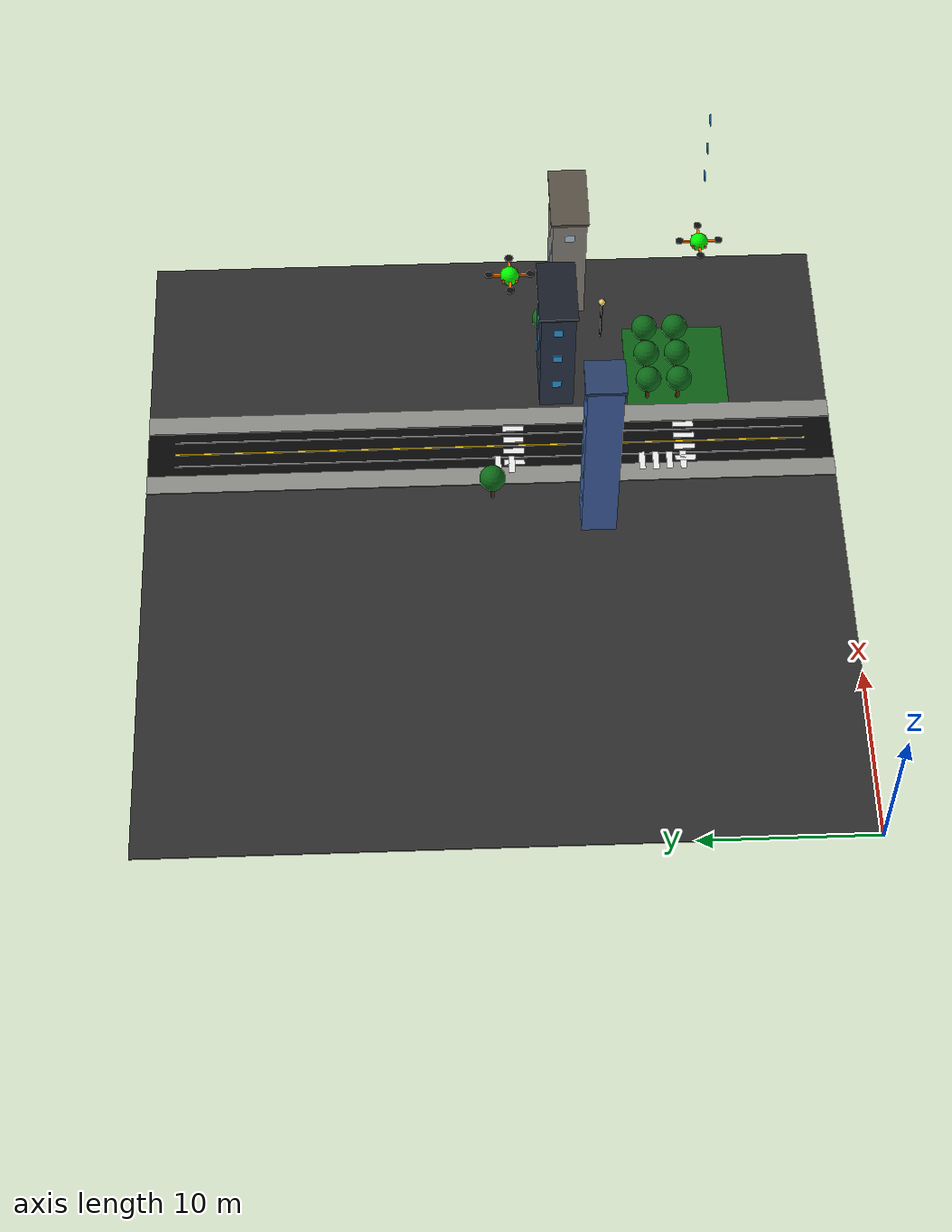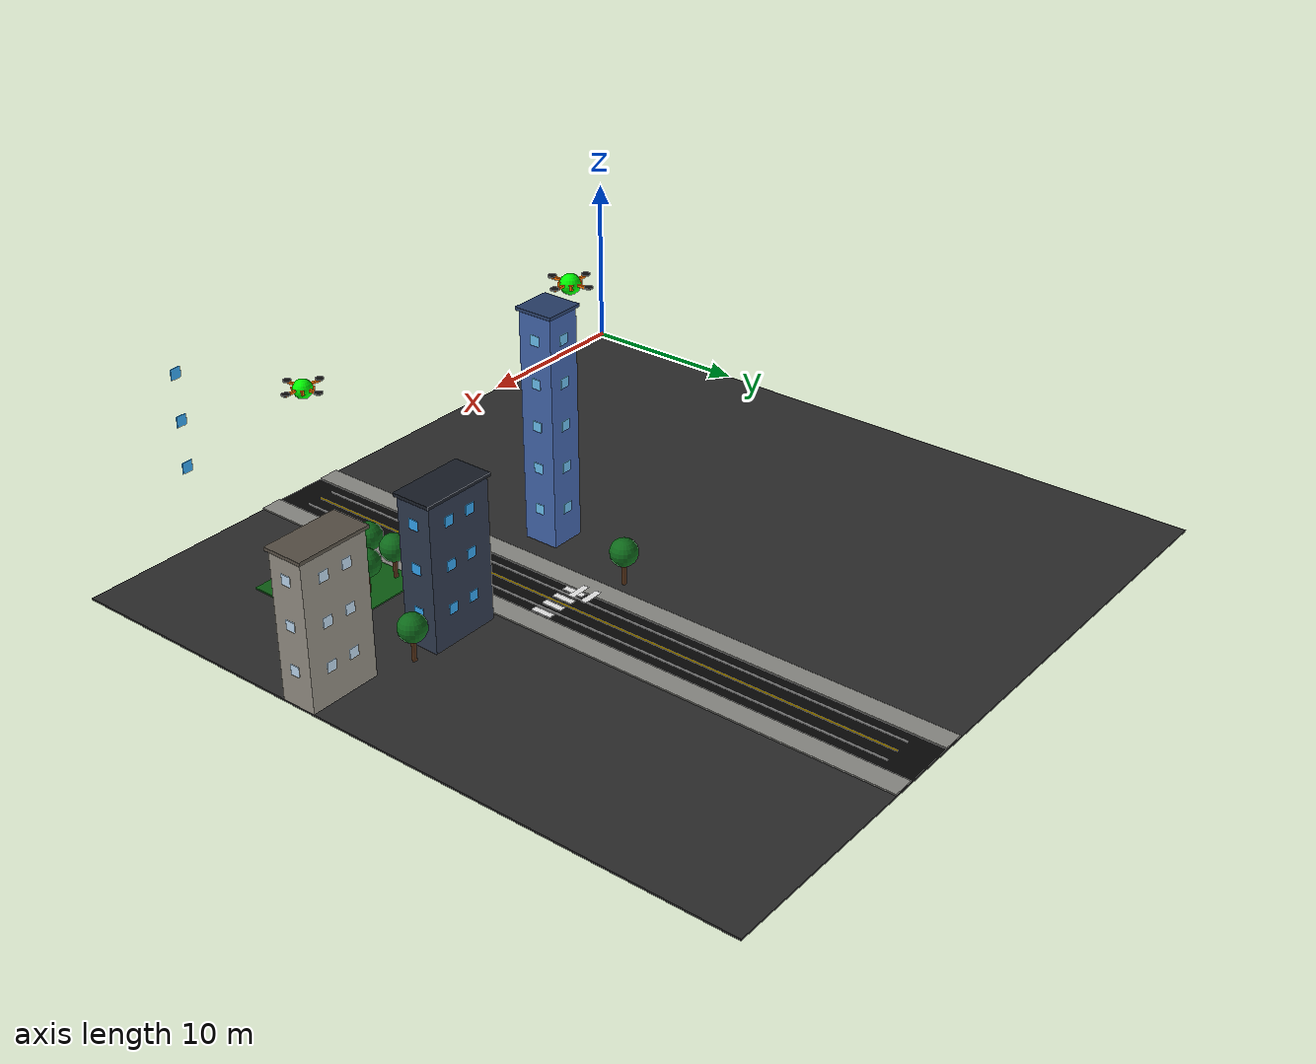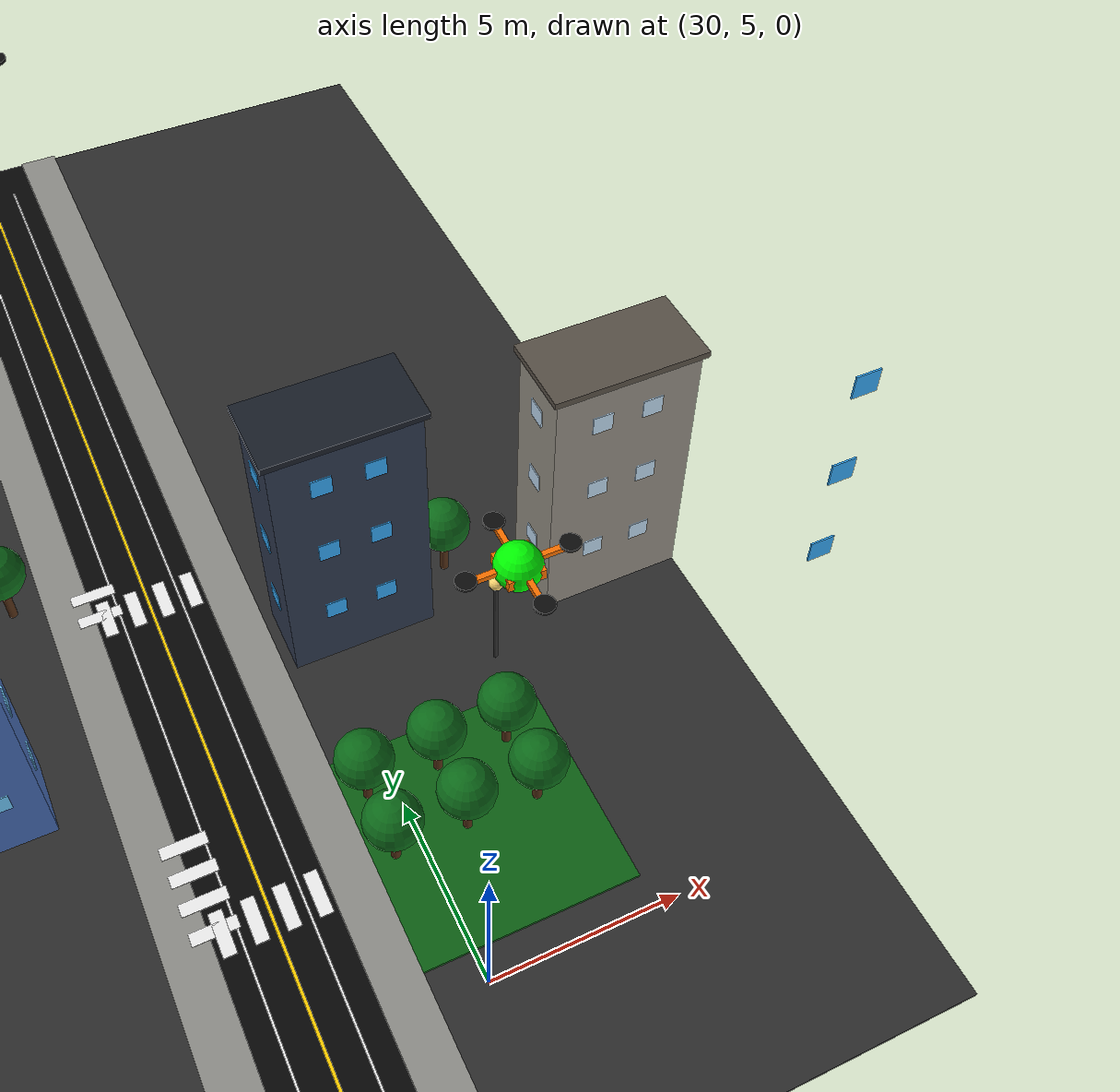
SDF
<sdf version="1.10">
 <world name="city_uav_demo">
  <model name="ground_plane">
   <static>true</static>
   <pose>20.0000 20.0000 -0.0500 0 0 0.0000</pose>
   <link name="link">
    <collision name="collision"><geometry><box><size>40.0000 40.0000 0.1000</size></box></geometry></collision>
    <visual name="visual">
     <geometry><box><size>40.0000 40.0000 0.1000</size></box></geometry>
     <material><ambient>0.18 0.18 0.18 1.0</ambient><diffuse>0.18 0.18 0.18 1.0</diffuse></material>
    </visual>
   </link>
  </model>
  <model name="road_4_surface">
   <static>true</static>
   <pose>26.0000 20.0000 0.0400 0 0 0.0000</pose>
   <link name="link">
    <collision name="collision"><geometry><box><size>3.0000 40.0000 0.0400</size></box></geometry></collision>
    <visual name="visual">
     <geometry><box><size>3.0000 40.0000 0.0400</size></box></geometry>
     <material><ambient>0.025 0.025 0.025 1.0</ambient><diffuse>0.025 0.025 0.025 1.0</diffuse></material>
    </visual>
   </link>
  </model>
  <model name="road_4_sidewalk_left">
   <static>true</static>
   <pose>23.9000 20.0000 0.0800 0 0 0.0000</pose>
   <link name="link">
    <visual name="visual">
     <geometry><box><size>1.2000 40.0000 0.0800</size></box></geometry>
     <material><ambient>0.56 0.56 0.54 1.0</ambient><diffuse>0.56 0.56 0.54 1.0</diffuse></material>
    </visual>
   </link>
  </model>
  <model name="road_4_sidewalk_right">
   <static>true</static>
   <pose>28.1000 20.0000 0.0800 0 0 0.0000</pose>
   <link name="link">
    <visual name="visual">
     <geometry><box><size>1.2000 40.0000 0.0800</size></box></geometry>
     <material><ambient>0.56 0.56 0.54 1.0</ambient><diffuse>0.56 0.56 0.54 1.0</diffuse></material>
    </visual>
   </link>
  </model>
  <model name="road_4_center_line">
   <static>true</static>
   <pose>26.0000 20.0000 0.0950 0 0 0.0000</pose>
   <link name="link">
    <visual name="visual">
     <geometry><box><size>0.0800 36.8000 0.0250</size></box></geometry>
     <material><ambient>1.0 0.82 0.0 1.0</ambient><diffuse>1.0 0.82 0.0 1.0</diffuse></material>
    </visual>
   </link>
  </model>
  <model name="road_4_white_line_1">
   <static>true</static>
   <pose>25.1600 20.0000 0.0950 0 0 0.0000</pose>
   <link name="link">
    <visual name="visual">
     <geometry><box><size>0.0550 36.8000 0.0250</size></box></geometry>
     <material><ambient>0.95 0.95 0.95 1.0</ambient><diffuse>0.95 0.95 0.95 1.0</diffuse></material>
    </visual>
   </link>
  </model>
  <model name="road_4_white_line_2">
   <static>true</static>
   <pose>26.8400 20.0000 0.0950 0 0 0.0000</pose>
   <link name="link">
    <visual name="visual">
     <geometry><box><size>0.0550 36.8000 0.0250</size></box></geometry>
     <material><ambient>0.95 0.95 0.95 1.0</ambient><diffuse>0.95 0.95 0.95 1.0</diffuse></material>
    </visual>
   </link>
  </model>
  <model name="crosswalk_1_h_0">
   <static>true</static>
   <pose>24.8000 8.6500 0.1200 0 0 0.0000</pose>
   <link name="link">
    <visual name="visual">
     <geometry><box><size>0.3500 1.2000 0.0250</size></box></geometry>
     <material><ambient>0.95 0.95 0.95 1.0</ambient><diffuse>0.95 0.95 0.95 1.0</diffuse></material>
    </visual>
   </link>
  </model>
  <model name="crosswalk_1_v_0">
   <static>true</static>
   <pose>24.6500 8.8000 0.1200 0 0 0.0000</pose>
   <link name="link">
    <visual name="visual">
     <geometry><box><size>1.2000 0.3500 0.0250</size></box></geometry>
     <material><ambient>0.95 0.95 0.95 1.0</ambient><diffuse>0.95 0.95 0.95 1.0</diffuse></material>
    </visual>
   </link>
  </model>
  <model name="crosswalk_1_h_1">
   <static>true</static>
   <pose>25.6000 8.6500 0.1200 0 0 0.0000</pose>
   <link name="link">
    <visual name="visual">
     <geometry><box><size>0.3500 1.2000 0.0250</size></box></geometry>
     <material><ambient>0.95 0.95 0.95 1.0</ambient><diffuse>0.95 0.95 0.95 1.0</diffuse></material>
    </visual>
   </link>
  </model>
  <model name="crosswalk_1_v_1">
   <static>true</static>
   <pose>24.6500 9.6000 0.1200 0 0 0.0000</pose>
   <link name="link">
    <visual name="visual">
     <geometry><box><size>1.2000 0.3500 0.0250</size></box></geometry>
     <material><ambient>0.95 0.95 0.95 1.0</ambient><diffuse>0.95 0.95 0.95 1.0</diffuse></material>
    </visual>
   </link>
  </model>
  <model name="crosswalk_1_h_2">
   <static>true</static>
   <pose>26.4000 8.6500 0.1200 0 0 0.0000</pose>
   <link name="link">
    <visual name="visual">
     <geometry><box><size>0.3500 1.2000 0.0250</size></box></geometry>
     <material><ambient>0.95 0.95 0.95 1.0</ambient><diffuse>0.95 0.95 0.95 1.0</diffuse></material>
    </visual>
   </link>
  </model>
  <model name="crosswalk_1_v_2">
   <static>true</static>
   <pose>24.6500 10.4000 0.1200 0 0 0.0000</pose>
   <link name="link">
    <visual name="visual">
     <geometry><box><size>1.2000 0.3500 0.0250</size></box></geometry>
     <material><ambient>0.95 0.95 0.95 1.0</ambient><diffuse>0.95 0.95 0.95 1.0</diffuse></material>
    </visual>
   </link>
  </model>
  <model name="crosswalk_1_h_3">
   <static>true</static>
   <pose>27.2000 8.6500 0.1200 0 0 0.0000</pose>
   <link name="link">
    <visual name="visual">
     <geometry><box><size>0.3500 1.2000 0.0250</size></box></geometry>
     <material><ambient>0.95 0.95 0.95 1.0</ambient><diffuse>0.95 0.95 0.95 1.0</diffuse></material>
    </visual>
   </link>
  </model>
  <model name="crosswalk_1_v_3">
   <static>true</static>
   <pose>24.6500 11.2000 0.1200 0 0 0.0000</pose>
   <link name="link">
    <visual name="visual">
     <geometry><box><size>1.2000 0.3500 0.0250</size></box></geometry>
     <material><ambient>0.95 0.95 0.95 1.0</ambient><diffuse>0.95 0.95 0.95 1.0</diffuse></material>
    </visual>
   </link>
  </model>
  <model name="crosswalk_3_h_0">
   <static>true</static>
   <pose>24.8000 18.6500 0.1200 0 0 0.0000</pose>
   <link name="link">
    <visual name="visual">
     <geometry><box><size>0.3500 1.2000 0.0250</size></box></geometry>
     <material><ambient>0.95 0.95 0.95 1.0</ambient><diffuse>0.95 0.95 0.95 1.0</diffuse></material>
    </visual>
   </link>
  </model>
  <model name="crosswalk_3_v_0">
   <static>true</static>
   <pose>24.6500 18.8000 0.1200 0 0 0.0000</pose>
   <link name="link">
    <visual name="visual">
     <geometry><box><size>1.2000 0.3500 0.0250</size></box></geometry>
     <material><ambient>0.95 0.95 0.95 1.0</ambient><diffuse>0.95 0.95 0.95 1.0</diffuse></material>
    </visual>
   </link>
  </model>
  <model name="crosswalk_3_h_1">
   <static>true</static>
   <pose>25.6000 18.6500 0.1200 0 0 0.0000</pose>
   <link name="link">
    <visual name="visual">
     <geometry><box><size>0.3500 1.2000 0.0250</size></box></geometry>
     <material><ambient>0.95 0.95 0.95 1.0</ambient><diffuse>0.95 0.95 0.95 1.0</diffuse></material>
    </visual>
   </link>
  </model>
  <model name="crosswalk_3_v_1">
   <static>true</static>
   <pose>24.6500 19.6000 0.1200 0 0 0.0000</pose>
   <link name="link">
    <visual name="visual">
     <geometry><box><size>1.2000 0.3500 0.0250</size></box></geometry>
     <material><ambient>0.95 0.95 0.95 1.0</ambient><diffuse>0.95 0.95 0.95 1.0</diffuse></material>
    </visual>
   </link>
  </model>
  <model name="crosswalk_3_h_2">
   <static>true</static>
   <pose>26.4000 18.6500 0.1200 0 0 0.0000</pose>
   <link name="link">
    <visual name="visual">
     <geometry><box><size>0.3500 1.2000 0.0250</size></box></geometry>
     <material><ambient>0.95 0.95 0.95 1.0</ambient><diffuse>0.95 0.95 0.95 1.0</diffuse></material>
    </visual>
   </link>
  </model>
  <model name="crosswalk_3_h_3">
   <static>true</static>
   <pose>27.2000 18.6500 0.1200 0 0 0.0000</pose>
   <link name="link">
    <visual name="visual">
     <geometry><box><size>0.3500 1.2000 0.0250</size></box></geometry>
     <material><ambient>0.95 0.95 0.95 1.0</ambient><diffuse>0.95 0.95 0.95 1.0</diffuse></material>
    </visual>
   </link>
  </model>
  <model name="building_0_body">
   <static>true</static>
   <pose>38.0000 15.0000 4.0000 0 0 0.0000</pose>
   <link name="link">
    <collision name="collision"><geometry><box><size>4.0000 2.0000 8.0000</size></box></geometry></collision>
    <visual name="visual">
     <geometry><box><size>4.0000 2.0000 8.0000</size></box></geometry>
     <material><ambient>0.58 0.56 0.52 1.0</ambient><diffuse>0.58 0.56 0.52 1.0</diffuse></material>
    </visual>
   </link>
  </model>
  <model name="building_0_roof">
   <static>true</static>
   <pose>38.0000 15.0000 8.0900 0 0 0.0000</pose>
   <link name="link">
    <collision name="collision"><geometry><box><size>4.2500 2.2500 0.1800</size></box></geometry></collision>
    <visual name="visual">
     <geometry><box><size>4.2500 2.2500 0.1800</size></box></geometry>
     <material><ambient>0.35 0.32 0.28 1.0</ambient><diffuse>0.35 0.32 0.28 1.0</diffuse></material>
    </visual>
   </link>
  </model>
  <model name="building_0_window_front_0">
   <static>true</static>
   <pose>37.3000 13.9880 2.0000 0 0 0.0000</pose>
   <link name="link">
    <visual name="visual">
     <geometry><box><size>0.5500 0.0350 0.5500</size></box></geometry>
     <material><ambient>0.75 0.86 0.95 1.0</ambient><diffuse>0.75 0.86 0.95 1.0</diffuse></material>
    </visual>
   </link>
  </model>
  <model name="building_0_window_front_1">
   <static>true</static>
   <pose>38.7000 13.9880 2.0000 0 0 0.0000</pose>
   <link name="link">
    <visual name="visual">
     <geometry><box><size>0.5500 0.0350 0.5500</size></box></geometry>
     <material><ambient>0.75 0.86 0.95 1.0</ambient><diffuse>0.75 0.86 0.95 1.0</diffuse></material>
    </visual>
   </link>
  </model>
  <model name="building_0_window_front_2">
   <static>true</static>
   <pose>37.3000 13.9880 4.4000 0 0 0.0000</pose>
   <link name="link">
    <visual name="visual">
     <geometry><box><size>0.5500 0.0350 0.5500</size></box></geometry>
     <material><ambient>0.75 0.86 0.95 1.0</ambient><diffuse>0.75 0.86 0.95 1.0</diffuse></material>
    </visual>
   </link>
  </model>
  <model name="building_0_window_front_3">
   <static>true</static>
   <pose>38.7000 13.9880 4.4000 0 0 0.0000</pose>
   <link name="link">
    <visual name="visual">
     <geometry><box><size>0.5500 0.0350 0.5500</size></box></geometry>
     <material><ambient>0.75 0.86 0.95 1.0</ambient><diffuse>0.75 0.86 0.95 1.0</diffuse></material>
    </visual>
   </link>
  </model>
  <model name="building_0_window_front_4">
   <static>true</static>
   <pose>37.3000 13.9880 6.8000 0 0 0.0000</pose>
   <link name="link">
    <visual name="visual">
     <geometry><box><size>0.5500 0.0350 0.5500</size></box></geometry>
     <material><ambient>0.75 0.86 0.95 1.0</ambient><diffuse>0.75 0.86 0.95 1.0</diffuse></material>
    </visual>
   </link>
  </model>
  <model name="building_0_window_front_5">
   <static>true</static>
   <pose>38.7000 13.9880 6.8000 0 0 0.0000</pose>
   <link name="link">
    <visual name="visual">
     <geometry><box><size>0.5500 0.0350 0.5500</size></box></geometry>
     <material><ambient>0.75 0.86 0.95 1.0</ambient><diffuse>0.75 0.86 0.95 1.0</diffuse></material>
    </visual>
   </link>
  </model>
  <model name="building_0_window_back_0">
   <static>true</static>
   <pose>37.3000 16.0120 2.0000 0 0 0.0000</pose>
   <link name="link">
    <visual name="visual">
     <geometry><box><size>0.5500 0.0350 0.5500</size></box></geometry>
     <material><ambient>0.75 0.86 0.95 1.0</ambient><diffuse>0.75 0.86 0.95 1.0</diffuse></material>
    </visual>
   </link>
  </model>
  <model name="building_0_window_back_1">
   <static>true</static>
   <pose>38.7000 16.0120 2.0000 0 0 0.0000</pose>
   <link name="link">
    <visual name="visual">
     <geometry><box><size>0.5500 0.0350 0.5500</size></box></geometry>
     <material><ambient>0.75 0.86 0.95 1.0</ambient><diffuse>0.75 0.86 0.95 1.0</diffuse></material>
    </visual>
   </link>
  </model>
  <model name="building_0_window_back_2">
   <static>true</static>
   <pose>37.3000 16.0120 4.4000 0 0 0.0000</pose>
   <link name="link">
    <visual name="visual">
     <geometry><box><size>0.5500 0.0350 0.5500</size></box></geometry>
     <material><ambient>0.75 0.86 0.95 1.0</ambient><diffuse>0.75 0.86 0.95 1.0</diffuse></material>
    </visual>
   </link>
  </model>
  <model name="building_0_window_back_3">
   <static>true</static>
   <pose>38.7000 16.0120 4.4000 0 0 0.0000</pose>
   <link name="link">
    <visual name="visual">
     <geometry><box><size>0.5500 0.0350 0.5500</size></box></geometry>
     <material><ambient>0.75 0.86 0.95 1.0</ambient><diffuse>0.75 0.86 0.95 1.0</diffuse></material>
    </visual>
   </link>
  </model>
  <model name="building_0_window_back_4">
   <static>true</static>
   <pose>37.3000 16.0120 6.8000 0 0 0.0000</pose>
   <link name="link">
    <visual name="visual">
     <geometry><box><size>0.5500 0.0350 0.5500</size></box></geometry>
     <material><ambient>0.75 0.86 0.95 1.0</ambient><diffuse>0.75 0.86 0.95 1.0</diffuse></material>
    </visual>
   </link>
  </model>
  <model name="building_0_window_back_5">
   <static>true</static>
   <pose>38.7000 16.0120 6.8000 0 0 0.0000</pose>
   <link name="link">
    <visual name="visual">
     <geometry><box><size>0.5500 0.0350 0.5500</size></box></geometry>
     <material><ambient>0.75 0.86 0.95 1.0</ambient><diffuse>0.75 0.86 0.95 1.0</diffuse></material>
    </visual>
   </link>
  </model>
  <model name="building_0_window_left_0">
   <static>true</static>
   <pose>35.9880 15.0000 2.0000 0 0 0.0000</pose>
   <link name="link">
    <visual name="visual">
     <geometry><box><size>0.0350 0.5500 0.5500</size></box></geometry>
     <material><ambient>0.75 0.86 0.95 1.0</ambient><diffuse>0.75 0.86 0.95 1.0</diffuse></material>
    </visual>
   </link>
  </model>
  <model name="building_0_window_left_1">
   <static>true</static>
   <pose>35.9880 15.0000 4.4000 0 0 0.0000</pose>
   <link name="link">
    <visual name="visual">
     <geometry><box><size>0.0350 0.5500 0.5500</size></box></geometry>
     <material><ambient>0.75 0.86 0.95 1.0</ambient><diffuse>0.75 0.86 0.95 1.0</diffuse></material>
    </visual>
   </link>
  </model>
  <model name="building_0_window_left_2">
   <static>true</static>
   <pose>35.9880 15.0000 6.8000 0 0 0.0000</pose>
   <link name="link">
    <visual name="visual">
     <geometry><box><size>0.0350 0.5500 0.5500</size></box></geometry>
     <material><ambient>0.75 0.86 0.95 1.0</ambient><diffuse>0.75 0.86 0.95 1.0</diffuse></material>
    </visual>
   </link>
  </model>
  <model name="building_0_window_right_0">
   <static>true</static>
   <pose>40.0120 15.0000 2.0000 0 0 0.0000</pose>
   <link name="link">
    <visual name="visual">
     <geometry><box><size>0.0350 0.5500 0.5500</size></box></geometry>
     <material><ambient>0.75 0.86 0.95 1.0</ambient><diffuse>0.75 0.86 0.95 1.0</diffuse></material>
    </visual>
   </link>
  </model>
  <model name="building_0_window_right_1">
   <static>true</static>
   <pose>40.0120 15.0000 4.4000 0 0 0.0000</pose>
   <link name="link">
    <visual name="visual">
     <geometry><box><size>0.0350 0.5500 0.5500</size></box></geometry>
     <material><ambient>0.75 0.86 0.95 1.0</ambient><diffuse>0.75 0.86 0.95 1.0</diffuse></material>
    </visual>
   </link>
  </model>
  <model name="building_0_window_right_2">
   <static>true</static>
   <pose>40.0120 15.0000 6.8000 0 0 0.0000</pose>
   <link name="link">
    <visual name="visual">
     <geometry><box><size>0.0350 0.5500 0.5500</size></box></geometry>
     <material><ambient>0.75 0.86 0.95 1.0</ambient><diffuse>0.75 0.86 0.95 1.0</diffuse></material>
    </visual>
   </link>
  </model>
  <model name="building_11_body">
   <static>true</static>
   <pose>31.0000 16.0000 4.0000 0 0 0.0000</pose>
   <link name="link">
    <collision name="collision"><geometry><box><size>4.0000 2.0000 8.0000</size></box></geometry></collision>
    <visual name="visual">
     <geometry><box><size>4.0000 2.0000 8.0000</size></box></geometry>
     <material><ambient>0.18 0.22 0.30 1.0</ambient><diffuse>0.18 0.22 0.30 1.0</diffuse></material>
    </visual>
   </link>
  </model>
  <model name="building_11_roof">
   <static>true</static>
   <pose>31.0000 16.0000 8.0900 0 0 0.0000</pose>
   <link name="link">
    <collision name="collision"><geometry><box><size>4.2500 2.2500 0.1800</size></box></geometry></collision>
    <visual name="visual">
     <geometry><box><size>4.2500 2.2500 0.1800</size></box></geometry>
     <material><ambient>0.10 0.12 0.16 1.0</ambient><diffuse>0.10 0.12 0.16 1.0</diffuse></material>
    </visual>
   </link>
  </model>
  <model name="building_11_window_front_0">
   <static>true</static>
   <pose>30.3000 14.9880 2.0000 0 0 0.0000</pose>
   <link name="link">
    <visual name="visual">
     <geometry><box><size>0.5500 0.0350 0.5500</size></box></geometry>
     <material><ambient>0.20 0.65 0.95 1.0</ambient><diffuse>0.20 0.65 0.95 1.0</diffuse></material>
    </visual>
   </link>
  </model>
  <model name="building_11_window_front_1">
   <static>true</static>
   <pose>31.7000 14.9880 2.0000 0 0 0.0000</pose>
   <link name="link">
    <visual name="visual">
     <geometry><box><size>0.5500 0.0350 0.5500</size></box></geometry>
     <material><ambient>0.20 0.65 0.95 1.0</ambient><diffuse>0.20 0.65 0.95 1.0</diffuse></material>
    </visual>
   </link>
  </model>
  <model name="building_11_window_front_2">
   <static>true</static>
   <pose>30.3000 14.9880 4.4000 0 0 0.0000</pose>
   <link name="link">
    <visual name="visual">
     <geometry><box><size>0.5500 0.0350 0.5500</size></box></geometry>
     <material><ambient>0.20 0.65 0.95 1.0</ambient><diffuse>0.20 0.65 0.95 1.0</diffuse></material>
    </visual>
   </link>
  </model>
  <model name="building_11_window_front_3">
   <static>true</static>
   <pose>31.7000 14.9880 4.4000 0 0 0.0000</pose>
   <link name="link">
    <visual name="visual">
     <geometry><box><size>0.5500 0.0350 0.5500</size></box></geometry>
     <material><ambient>0.20 0.65 0.95 1.0</ambient><diffuse>0.20 0.65 0.95 1.0</diffuse></material>
    </visual>
   </link>
  </model>
  <model name="building_11_window_front_4">
   <static>true</static>
   <pose>30.3000 14.9880 6.8000 0 0 0.0000</pose>
   <link name="link">
    <visual name="visual">
     <geometry><box><size>0.5500 0.0350 0.5500</size></box></geometry>
     <material><ambient>0.20 0.65 0.95 1.0</ambient><diffuse>0.20 0.65 0.95 1.0</diffuse></material>
    </visual>
   </link>
  </model>
  <model name="building_11_window_front_5">
   <static>true</static>
   <pose>31.7000 14.9880 6.8000 0 0 0.0000</pose>
   <link name="link">
    <visual name="visual">
     <geometry><box><size>0.5500 0.0350 0.5500</size></box></geometry>
     <material><ambient>0.20 0.65 0.95 1.0</ambient><diffuse>0.20 0.65 0.95 1.0</diffuse></material>
    </visual>
   </link>
  </model>
  <model name="building_11_window_back_0">
   <static>true</static>
   <pose>30.3000 17.0120 2.0000 0 0 0.0000</pose>
   <link name="link">
    <visual name="visual">
     <geometry><box><size>0.5500 0.0350 0.5500</size></box></geometry>
     <material><ambient>0.20 0.65 0.95 1.0</ambient><diffuse>0.20 0.65 0.95 1.0</diffuse></material>
    </visual>
   </link>
  </model>
  <model name="building_11_window_back_1">
   <static>true</static>
   <pose>31.7000 17.0120 2.0000 0 0 0.0000</pose>
   <link name="link">
    <visual name="visual">
     <geometry><box><size>0.5500 0.0350 0.5500</size></box></geometry>
     <material><ambient>0.20 0.65 0.95 1.0</ambient><diffuse>0.20 0.65 0.95 1.0</diffuse></material>
    </visual>
   </link>
  </model>
  <model name="building_11_window_back_2">
   <static>true</static>
   <pose>30.3000 17.0120 4.4000 0 0 0.0000</pose>
   <link name="link">
    <visual name="visual">
     <geometry><box><size>0.5500 0.0350 0.5500</size></box></geometry>
     <material><ambient>0.20 0.65 0.95 1.0</ambient><diffuse>0.20 0.65 0.95 1.0</diffuse></material>
    </visual>
   </link>
  </model>
  <model name="building_11_window_back_3">
   <static>true</static>
   <pose>31.7000 17.0120 4.4000 0 0 0.0000</pose>
   <link name="link">
    <visual name="visual">
     <geometry><box><size>0.5500 0.0350 0.5500</size></box></geometry>
     <material><ambient>0.20 0.65 0.95 1.0</ambient><diffuse>0.20 0.65 0.95 1.0</diffuse></material>
    </visual>
   </link>
  </model>
  <model name="building_11_window_back_4">
   <static>true</static>
   <pose>30.3000 17.0120 6.8000 0 0 0.0000</pose>
   <link name="link">
    <visual name="visual">
     <geometry><box><size>0.5500 0.0350 0.5500</size></box></geometry>
     <material><ambient>0.20 0.65 0.95 1.0</ambient><diffuse>0.20 0.65 0.95 1.0</diffuse></material>
    </visual>
   </link>
  </model>
  <model name="building_11_window_back_5">
   <static>true</static>
   <pose>31.7000 17.0120 6.8000 0 0 0.0000</pose>
   <link name="link">
    <visual name="visual">
     <geometry><box><size>0.5500 0.0350 0.5500</size></box></geometry>
     <material><ambient>0.20 0.65 0.95 1.0</ambient><diffuse>0.20 0.65 0.95 1.0</diffuse></material>
    </visual>
   </link>
  </model>
  <model name="building_11_window_left_0">
   <static>true</static>
   <pose>28.9880 16.0000 2.0000 0 0 0.0000</pose>
   <link name="link">
    <visual name="visual">
     <geometry><box><size>0.0350 0.5500 0.5500</size></box></geometry>
     <material><ambient>0.20 0.65 0.95 1.0</ambient><diffuse>0.20 0.65 0.95 1.0</diffuse></material>
    </visual>
   </link>
  </model>
  <model name="building_11_window_left_1">
   <static>true</static>
   <pose>28.9880 16.0000 4.4000 0 0 0.0000</pose>
   <link name="link">
    <visual name="visual">
     <geometry><box><size>0.0350 0.5500 0.5500</size></box></geometry>
     <material><ambient>0.20 0.65 0.95 1.0</ambient><diffuse>0.20 0.65 0.95 1.0</diffuse></material>
    </visual>
   </link>
  </model>
  <model name="building_11_window_left_2">
   <static>true</static>
   <pose>28.9880 16.0000 6.8000 0 0 0.0000</pose>
   <link name="link">
    <visual name="visual">
     <geometry><box><size>0.0350 0.5500 0.5500</size></box></geometry>
     <material><ambient>0.20 0.65 0.95 1.0</ambient><diffuse>0.20 0.65 0.95 1.0</diffuse></material>
    </visual>
   </link>
  </model>
  <model name="building_11_window_right_0">
   <static>true</static>
   <pose>33.0120 16.0000 2.0000 0 0 0.0000</pose>
   <link name="link">
    <visual name="visual">
     <geometry><box><size>0.0350 0.5500 0.5500</size></box></geometry>
     <material><ambient>0.20 0.65 0.95 1.0</ambient><diffuse>0.20 0.65 0.95 1.0</diffuse></material>
    </visual>
   </link>
  </model>
  <model name="building_11_window_right_1">
   <static>true</static>
   <pose>33.0120 16.0000 4.4000 0 0 0.0000</pose>
   <link name="link">
    <visual name="visual">
     <geometry><box><size>0.0350 0.5500 0.5500</size></box></geometry>
     <material><ambient>0.20 0.65 0.95 1.0</ambient><diffuse>0.20 0.65 0.95 1.0</diffuse></material>
    </visual>
   </link>
  </model>
  <model name="building_11_window_right_2">
   <static>true</static>
   <pose>33.0120 16.0000 6.8000 0 0 0.0000</pose>
   <link name="link">
    <visual name="visual">
     <geometry><box><size>0.0350 0.5500 0.5500</size></box></geometry>
     <material><ambient>0.20 0.65 0.95 1.0</ambient><diffuse>0.20 0.65 0.95 1.0</diffuse></material>
    </visual>
   </link>
  </model>
  <model name="building_23_body">
   <static>true</static>
   <pose>21.0000 14.0000 6.5000 0 0 0.0000</pose>
   <link name="link">
    <collision name="collision"><geometry><box><size>2.0000 2.0000 13.0000</size></box></geometry></collision>
    <visual name="visual">
     <geometry><box><size>2.0000 2.0000 13.0000</size></box></geometry>
     <material><ambient>0.26 0.40 0.68 1.0</ambient><diffuse>0.26 0.40 0.68 1.0</diffuse></material>
    </visual>
   </link>
  </model>
  <model name="building_23_roof">
   <static>true</static>
   <pose>21.0000 14.0000 13.0900 0 0 0.0000</pose>
   <link name="link">
    <collision name="collision"><geometry><box><size>2.2500 2.2500 0.1800</size></box></geometry></collision>
    <visual name="visual">
     <geometry><box><size>2.2500 2.2500 0.1800</size></box></geometry>
     <material><ambient>0.16 0.25 0.42 1.0</ambient><diffuse>0.16 0.25 0.42 1.0</diffuse></material>
    </visual>
   </link>
  </model>
  <model name="building_23_window_front_0">
   <static>true</static>
   <pose>21.0000 12.9880 2.0000 0 0 0.0000</pose>
   <link name="link">
    <visual name="visual">
     <geometry><box><size>0.5500 0.0350 0.5500</size></box></geometry>
     <material><ambient>0.42 0.76 0.95 1.0</ambient><diffuse>0.42 0.76 0.95 1.0</diffuse></material>
    </visual>
   </link>
  </model>
  <model name="building_23_window_front_1">
   <static>true</static>
   <pose>21.0000 12.9880 4.4000 0 0 0.0000</pose>
   <link name="link">
    <visual name="visual">
     <geometry><box><size>0.5500 0.0350 0.5500</size></box></geometry>
     <material><ambient>0.42 0.76 0.95 1.0</ambient><diffuse>0.42 0.76 0.95 1.0</diffuse></material>
    </visual>
   </link>
  </model>
  <model name="building_23_window_front_2">
   <static>true</static>
   <pose>21.0000 12.9880 6.8000 0 0 0.0000</pose>
   <link name="link">
    <visual name="visual">
     <geometry><box><size>0.5500 0.0350 0.5500</size></box></geometry>
     <material><ambient>0.42 0.76 0.95 1.0</ambient><diffuse>0.42 0.76 0.95 1.0</diffuse></material>
    </visual>
   </link>
  </model>
  <model name="building_23_window_front_3">
   <static>true</static>
   <pose>21.0000 12.9880 9.2000 0 0 0.0000</pose>
   <link name="link">
    <visual name="visual">
     <geometry><box><size>0.5500 0.0350 0.5500</size></box></geometry>
     <material><ambient>0.42 0.76 0.95 1.0</ambient><diffuse>0.42 0.76 0.95 1.0</diffuse></material>
    </visual>
   </link>
  </model>
  <model name="building_23_window_front_4">
   <static>true</static>
   <pose>21.0000 12.9880 11.6000 0 0 0.0000</pose>
   <link name="link">
    <visual name="visual">
     <geometry><box><size>0.5500 0.0350 0.5500</size></box></geometry>
     <material><ambient>0.42 0.76 0.95 1.0</ambient><diffuse>0.42 0.76 0.95 1.0</diffuse></material>
    </visual>
   </link>
  </model>
  <model name="building_23_window_back_0">
   <static>true</static>
   <pose>21.0000 15.0120 2.0000 0 0 0.0000</pose>
   <link name="link">
    <visual name="visual">
     <geometry><box><size>0.5500 0.0350 0.5500</size></box></geometry>
     <material><ambient>0.42 0.76 0.95 1.0</ambient><diffuse>0.42 0.76 0.95 1.0</diffuse></material>
    </visual>
   </link>
  </model>
  <model name="building_23_window_back_1">
   <static>true</static>
   <pose>21.0000 15.0120 4.4000 0 0 0.0000</pose>
   <link name="link">
    <visual name="visual">
     <geometry><box><size>0.5500 0.0350 0.5500</size></box></geometry>
     <material><ambient>0.42 0.76 0.95 1.0</ambient><diffuse>0.42 0.76 0.95 1.0</diffuse></material>
    </visual>
   </link>
  </model>
  <model name="building_23_window_back_2">
   <static>true</static>
   <pose>21.0000 15.0120 6.8000 0 0 0.0000</pose>
   <link name="link">
    <visual name="visual">
     <geometry><box><size>0.5500 0.0350 0.5500</size></box></geometry>
     <material><ambient>0.42 0.76 0.95 1.0</ambient><diffuse>0.42 0.76 0.95 1.0</diffuse></material>
    </visual>
   </link>
  </model>
  <model name="building_23_window_back_3">
   <static>true</static>
   <pose>21.0000 15.0120 9.2000 0 0 0.0000</pose>
   <link name="link">
    <visual name="visual">
     <geometry><box><size>0.5500 0.0350 0.5500</size></box></geometry>
     <material><ambient>0.42 0.76 0.95 1.0</ambient><diffuse>0.42 0.76 0.95 1.0</diffuse></material>
    </visual>
   </link>
  </model>
  <model name="building_23_window_back_4">
   <static>true</static>
   <pose>21.0000 15.0120 11.6000 0 0 0.0000</pose>
   <link name="link">
    <visual name="visual">
     <geometry><box><size>0.5500 0.0350 0.5500</size></box></geometry>
     <material><ambient>0.42 0.76 0.95 1.0</ambient><diffuse>0.42 0.76 0.95 1.0</diffuse></material>
    </visual>
   </link>
  </model>
  <model name="building_23_window_right_0">
   <static>true</static>
   <pose>22.0120 14.0000 2.0000 0 0 0.0000</pose>
   <link name="link">
    <visual name="visual">
     <geometry><box><size>0.0350 0.5500 0.5500</size></box></geometry>
     <material><ambient>0.42 0.76 0.95 1.0</ambient><diffuse>0.42 0.76 0.95 1.0</diffuse></material>
    </visual>
   </link>
  </model>
  <model name="building_23_window_right_1">
   <static>true</static>
   <pose>22.0120 14.0000 4.4000 0 0 0.0000</pose>
   <link name="link">
    <visual name="visual">
     <geometry><box><size>0.0350 0.5500 0.5500</size></box></geometry>
     <material><ambient>0.42 0.76 0.95 1.0</ambient><diffuse>0.42 0.76 0.95 1.0</diffuse></material>
    </visual>
   </link>
  </model>
  <model name="building_23_window_right_2">
   <static>true</static>
   <pose>22.0120 14.0000 6.8000 0 0 0.0000</pose>
   <link name="link">
    <visual name="visual">
     <geometry><box><size>0.0350 0.5500 0.5500</size></box></geometry>
     <material><ambient>0.42 0.76 0.95 1.0</ambient><diffuse>0.42 0.76 0.95 1.0</diffuse></material>
    </visual>
   </link>
  </model>
  <model name="building_23_window_right_3">
   <static>true</static>
   <pose>22.0120 14.0000 9.2000 0 0 0.0000</pose>
   <link name="link">
    <visual name="visual">
     <geometry><box><size>0.0350 0.5500 0.5500</size></box></geometry>
     <material><ambient>0.42 0.76 0.95 1.0</ambient><diffuse>0.42 0.76 0.95 1.0</diffuse></material>
    </visual>
   </link>
  </model>
  <model name="building_23_window_right_4">
   <static>true</static>
   <pose>22.0120 14.0000 11.6000 0 0 0.0000</pose>
   <link name="link">
    <visual name="visual">
     <geometry><box><size>0.0350 0.5500 0.5500</size></box></geometry>
     <material><ambient>0.42 0.76 0.95 1.0</ambient><diffuse>0.42 0.76 0.95 1.0</diffuse></material>
    </visual>
   </link>
  </model>
  <model name="building_26_window_back_3">
   <static>true</static>
   <pose>38.5000 7.0120 9.2000 0 0 0.0000</pose>
   <link name="link">
    <visual name="visual">
     <geometry><box><size>0.5500 0.0350 0.5500</size></box></geometry>
     <material><ambient>0.20 0.65 0.95 1.0</ambient><diffuse>0.20 0.65 0.95 1.0</diffuse></material>
    </visual>
   </link>
  </model>
  <model name="building_26_window_back_4">
   <static>true</static>
   <pose>38.5000 7.0120 11.6000 0 0 0.0000</pose>
   <link name="link">
    <visual name="visual">
     <geometry><box><size>0.5500 0.0350 0.5500</size></box></geometry>
     <material><ambient>0.20 0.65 0.95 1.0</ambient><diffuse>0.20 0.65 0.95 1.0</diffuse></material>
    </visual>
   </link>
  </model>
  <model name="building_26_window_back_5">
   <static>true</static>
   <pose>38.5000 7.0120 14.0000 0 0 0.0000</pose>
   <link name="link">
    <visual name="visual">
     <geometry><box><size>0.5500 0.0350 0.5500</size></box></geometry>
     <material><ambient>0.20 0.65 0.95 1.0</ambient><diffuse>0.20 0.65 0.95 1.0</diffuse></material>
    </visual>
   </link>
  </model>
  <model name="urban_park_green_zone">
   <static>true</static>
   <pose>31.2000 8.8000 0.0700 0 0 0.0000</pose>
   <link name="link">
    <visual name="visual">
     <geometry><box><size>6.4000 6.0000 0.0800</size></box></geometry>
     <material><ambient>0.05 0.38 0.08 1.0</ambient><diffuse>0.05 0.38 0.08 1.0</diffuse></material>
    </visual>
   </link>
  </model>
  <model name="tree_1_trunk">
   <static>true</static>
   <pose>29.2800 8.8000 0.7500 0.0000 0.0000 0.0000</pose>
   <link name="link">
    <visual name="visual">
     <geometry><cylinder><radius>0.1200</radius><length>1.5000</length></cylinder></geometry>
     <material><ambient>0.32 0.18 0.08 1.0</ambient><diffuse>0.32 0.18 0.08 1.0</diffuse></material>
    </visual>
   </link>
  </model>
  <model name="tree_1_crown">
   <static>true</static>
   <pose>29.2800 8.8000 1.8500 0 0 0</pose>
   <link name="link">
    <visual name="visual">
     <geometry><sphere><radius>0.7500</radius></sphere></geometry>
     <material><ambient>0.05 0.42 0.10 1.0</ambient><diffuse>0.05 0.42 0.10 1.0</diffuse></material>
    </visual>
   </link>
  </model>
  <model name="tree_2_trunk">
   <static>true</static>
   <pose>29.2800 10.6000 0.7500 0.0000 0.0000 0.0000</pose>
   <link name="link">
    <visual name="visual">
     <geometry><cylinder><radius>0.1200</radius><length>1.5000</length></cylinder></geometry>
     <material><ambient>0.32 0.18 0.08 1.0</ambient><diffuse>0.32 0.18 0.08 1.0</diffuse></material>
    </visual>
   </link>
  </model>
  <model name="tree_2_crown">
   <static>true</static>
   <pose>29.2800 10.6000 1.8500 0 0 0</pose>
   <link name="link">
    <visual name="visual">
     <geometry><sphere><radius>0.7500</radius></sphere></geometry>
     <material><ambient>0.05 0.42 0.10 1.0</ambient><diffuse>0.05 0.42 0.10 1.0</diffuse></material>
    </visual>
   </link>
  </model>
  <model name="tree_4_trunk">
   <static>true</static>
   <pose>31.2000 8.8000 0.7500 0.0000 0.0000 0.0000</pose>
   <link name="link">
    <visual name="visual">
     <geometry><cylinder><radius>0.1200</radius><length>1.5000</length></cylinder></geometry>
     <material><ambient>0.32 0.18 0.08 1.0</ambient><diffuse>0.32 0.18 0.08 1.0</diffuse></material>
    </visual>
   </link>
  </model>
  <model name="tree_4_crown">
   <static>true</static>
   <pose>31.2000 8.8000 1.8500 0 0 0</pose>
   <link name="link">
    <visual name="visual">
     <geometry><sphere><radius>0.7500</radius></sphere></geometry>
     <material><ambient>0.05 0.42 0.10 1.0</ambient><diffuse>0.05 0.42 0.10 1.0</diffuse></material>
    </visual>
   </link>
  </model>
  <model name="tree_5_trunk">
   <static>true</static>
   <pose>31.2000 10.6000 0.7500 0.0000 0.0000 0.0000</pose>
   <link name="link">
    <visual name="visual">
     <geometry><cylinder><radius>0.1200</radius><length>1.5000</length></cylinder></geometry>
     <material><ambient>0.32 0.18 0.08 1.0</ambient><diffuse>0.32 0.18 0.08 1.0</diffuse></material>
    </visual>
   </link>
  </model>
  <model name="tree_5_crown">
   <static>true</static>
   <pose>31.2000 10.6000 1.8500 0 0 0</pose>
   <link name="link">
    <visual name="visual">
     <geometry><sphere><radius>0.7500</radius></sphere></geometry>
     <material><ambient>0.05 0.42 0.10 1.0</ambient><diffuse>0.05 0.42 0.10 1.0</diffuse></material>
    </visual>
   </link>
  </model>
  <model name="tree_7_trunk">
   <static>true</static>
   <pose>33.1200 8.8000 0.7500 0.0000 0.0000 0.0000</pose>
   <link name="link">
    <visual name="visual">
     <geometry><cylinder><radius>0.1200</radius><length>1.5000</length></cylinder></geometry>
     <material><ambient>0.32 0.18 0.08 1.0</ambient><diffuse>0.32 0.18 0.08 1.0</diffuse></material>
    </visual>
   </link>
  </model>
  <model name="tree_7_crown">
   <static>true</static>
   <pose>33.1200 8.8000 1.8500 0 0 0</pose>
   <link name="link">
    <visual name="visual">
     <geometry><sphere><radius>0.7500</radius></sphere></geometry>
     <material><ambient>0.05 0.42 0.10 1.0</ambient><diffuse>0.05 0.42 0.10 1.0</diffuse></material>
    </visual>
   </link>
  </model>
  <model name="tree_8_trunk">
   <static>true</static>
   <pose>33.1200 10.6000 0.7500 0.0000 0.0000 0.0000</pose>
   <link name="link">
    <visual name="visual">
     <geometry><cylinder><radius>0.1200</radius><length>1.5000</length></cylinder></geometry>
     <material><ambient>0.32 0.18 0.08 1.0</ambient><diffuse>0.32 0.18 0.08 1.0</diffuse></material>
    </visual>
   </link>
  </model>
  <model name="tree_8_crown">
   <static>true</static>
   <pose>33.1200 10.6000 1.8500 0 0 0</pose>
   <link name="link">
    <visual name="visual">
     <geometry><sphere><radius>0.7500</radius></sphere></geometry>
     <material><ambient>0.05 0.42 0.10 1.0</ambient><diffuse>0.05 0.42 0.10 1.0</diffuse></material>
    </visual>
   </link>
  </model>
  <model name="streetlight_2_pole">
   <static>true</static>
   <pose>34.0000 13.1000 1.6000 0.0000 0.0000 0.0000</pose>
   <link name="link">
    <visual name="visual">
     <geometry><cylinder><radius>0.0600</radius><length>3.2000</length></cylinder></geometry>
     <material><ambient>0.18 0.18 0.18 1.0</ambient><diffuse>0.18 0.18 0.18 1.0</diffuse></material>
    </visual>
   </link>
  </model>
  <model name="streetlight_2_lamp">
   <static>true</static>
   <pose>34.0000 13.1000 3.2500 0 0 0</pose>
   <link name="link">
    <visual name="visual">
     <geometry><sphere><radius>0.2000</radius></sphere></geometry>
     <material><ambient>1.0 0.85 0.45 1.0</ambient><diffuse>1.0 0.85 0.45 1.0</diffuse></material>
    </visual>
   </link>
  </model>
  <model name="tree_14_trunk">
   <static>true</static>
   <pose>34.0000 16.5000 0.7500 0.0000 0.0000 0.0000</pose>
   <link name="link">
    <visual name="visual">
     <geometry><cylinder><radius>0.1200</radius><length>1.5000</length></cylinder></geometry>
     <material><ambient>0.32 0.18 0.08 1.0</ambient><diffuse>0.32 0.18 0.08 1.0</diffuse></material>
    </visual>
   </link>
  </model>
  <model name="tree_14_crown">
   <static>true</static>
   <pose>34.0000 16.5000 1.8500 0 0 0</pose>
   <link name="link">
    <visual name="visual">
     <geometry><sphere><radius>0.7500</radius></sphere></geometry>
     <material><ambient>0.05 0.42 0.10 1.0</ambient><diffuse>0.05 0.42 0.10 1.0</diffuse></material>
    </visual>
   </link>
  </model>
  <model name="tree_22_trunk">
   <static>true</static>
   <pose>22.5000 20.0000 0.7500 0.0000 0.0000 0.0000</pose>
   <link name="link">
    <visual name="visual">
     <geometry><cylinder><radius>0.1200</radius><length>1.5000</length></cylinder></geometry>
     <material><ambient>0.32 0.18 0.08 1.0</ambient><diffuse>0.32 0.18 0.08 1.0</diffuse></material>
    </visual>
   </link>
  </model>
  <model name="tree_22_crown">
   <static>true</static>
   <pose>22.5000 20.0000 1.8500 0 0 0</pose>
   <link name="link">
    <visual name="visual">
     <geometry><sphere><radius>0.7500</radius></sphere></geometry>
     <material><ambient>0.05 0.42 0.10 1.0</ambient><diffuse>0.05 0.42 0.10 1.0</diffuse></material>
    </visual>
   </link>
  </model>
  <model name="start_3">
   <static>true</static>
   <pose>25.0000 19.0000 17.0000 0 0 0</pose>
   <link name="link">
    <visual name="visual">
     <geometry><sphere><radius>0.5000</radius></sphere></geometry>
     <material><ambient>0.0 1.0 0.0 1.0</ambient><diffuse>0.0 1.0 0.0 1.0</diffuse></material>
    </visual>
   </link>
  </model>
  <model name="start_5">
   <static>true</static>
   <pose>32.0000 8.0000 11.0000 0 0 0</pose>
   <link name="link">
    <visual name="visual">
     <geometry><sphere><radius>0.5000</radius></sphere></geometry>
     <material><ambient>0.0 1.0 0.0 1.0</ambient><diffuse>0.0 1.0 0.0 1.0</diffuse></material>
    </visual>
   </link>
  </model>
  <model name="uav_3_path_0">
   <static>true</static>
   <pose>25.0000 19.0000 17.0000 0 0 0</pose>
   <link name="link">
    <visual name="visual">
     <geometry><sphere><radius>0.2000</radius></sphere></geometry>
     <material><ambient>1.0 0.8 0.0 1.0</ambient><diffuse>1.0 0.8 0.0 1.0</diffuse></material>
    </visual>
   </link>
  </model>
  <model name="uav_5_path_0">
   <static>true</static>
   <pose>32.0000 8.0000 11.0000 0 0 0</pose>
   <link name="link">
    <visual name="visual">
     <geometry><sphere><radius>0.2000</radius></sphere></geometry>
     <material><ambient>0.8 0.2 1.0 1.0</ambient><diffuse>0.8 0.2 1.0 1.0</diffuse></material>
    </visual>
   </link>
  </model>
  <model name="uav_3">
   <static>true</static>
   <pose>25.0000 19.0000 17.0000 0 0 0</pose>
   <link name="base_link">
    <visual name="body_visual">
     <geometry><box><size>0.8 0.8 0.25</size></box></geometry>
     <material><ambient>1.0 0.45 0.0 1.0</ambient><diffuse>1.0 0.45 0.0 1.0</diffuse></material>
    </visual>
    <visual name="arm_x_visual">
     <pose>0 0 0.05 0 0 0</pose>
     <geometry><box><size>2.2 0.12 0.12</size></box></geometry>
     <material><ambient>1.0 0.45 0.0 1.0</ambient><diffuse>1.0 0.45 0.0 1.0</diffuse></material>
    </visual>
    <visual name="arm_y_visual">
     <pose>0 0 0.06 0 0 1.5708</pose>
     <geometry><box><size>2.2 0.12 0.12</size></box></geometry>
     <material><ambient>1.0 0.45 0.0 1.0</ambient><diffuse>1.0 0.45 0.0 1.0</diffuse></material>
    </visual>
    <visual name="rotor_1_visual">
     <pose>1.1 0 0.12 0 0 0</pose>
     <geometry><cylinder><radius>0.22</radius><length>0.06</length></cylinder></geometry>
     <material><ambient>0.05 0.05 0.05 1.0</ambient><diffuse>0.05 0.05 0.05 1.0</diffuse></material>
    </visual>
    <visual name="rotor_2_visual">
     <pose>-1.1 0 0.12 0 0 0</pose>
     <geometry><cylinder><radius>0.22</radius><length>0.06</length></cylinder></geometry>
     <material><ambient>0.05 0.05 0.05 1.0</ambient><diffuse>0.05 0.05 0.05 1.0</diffuse></material>
    </visual>
    <visual name="rotor_3_visual">
     <pose>0 1.1 0.12 0 0 0</pose>
     <geometry><cylinder><radius>0.22</radius><length>0.06</length></cylinder></geometry>
     <material><ambient>0.05 0.05 0.05 1.0</ambient><diffuse>0.05 0.05 0.05 1.0</diffuse></material>
    </visual>
    <visual name="rotor_4_visual">
     <pose>0 -1.1 0.12 0 0 0</pose>
     <geometry><cylinder><radius>0.22</radius><length>0.06</length></cylinder></geometry>
     <material><ambient>0.05 0.05 0.05 1.0</ambient><diffuse>0.05 0.05 0.05 1.0</diffuse></material>
    </visual>
   </link>
  </model>
  <model name="uav_5">
   <static>true</static>
   <pose>32.0000 8.0000 11.0000 0 0 0</pose>
   <link name="base_link">
    <visual name="body_visual">
     <geometry><box><size>0.8 0.8 0.25</size></box></geometry>
     <material><ambient>1.0 0.45 0.0 1.0</ambient><diffuse>1.0 0.45 0.0 1.0</diffuse></material>
    </visual>
    <visual name="arm_x_visual">
     <pose>0 0 0.05 0 0 0</pose>
     <geometry><box><size>2.2 0.12 0.12</size></box></geometry>
     <material><ambient>1.0 0.45 0.0 1.0</ambient><diffuse>1.0 0.45 0.0 1.0</diffuse></material>
    </visual>
    <visual name="arm_y_visual">
     <pose>0 0 0.06 0 0 1.5708</pose>
     <geometry><box><size>2.2 0.12 0.12</size></box></geometry>
     <material><ambient>1.0 0.45 0.0 1.0</ambient><diffuse>1.0 0.45 0.0 1.0</diffuse></material>
    </visual>
    <visual name="rotor_1_visual">
     <pose>1.1 0 0.12 0 0 0</pose>
     <geometry><cylinder><radius>0.22</radius><length>0.06</length></cylinder></geometry>
     <material><ambient>0.05 0.05 0.05 1.0</ambient><diffuse>0.05 0.05 0.05 1.0</diffuse></material>
    </visual>
    <visual name="rotor_2_visual">
     <pose>-1.1 0 0.12 0 0 0</pose>
     <geometry><cylinder><radius>0.22</radius><length>0.06</length></cylinder></geometry>
     <material><ambient>0.05 0.05 0.05 1.0</ambient><diffuse>0.05 0.05 0.05 1.0</diffuse></material>
    </visual>
    <visual name="rotor_3_visual">
     <pose>0 1.1 0.12 0 0 0</pose>
     <geometry><cylinder><radius>0.22</radius><length>0.06</length></cylinder></geometry>
     <material><ambient>0.05 0.05 0.05 1.0</ambient><diffuse>0.05 0.05 0.05 1.0</diffuse></material>
    </visual>
    <visual name="rotor_4_visual">
     <pose>0 -1.1 0.12 0 0 0</pose>
     <geometry><cylinder><radius>0.22</radius><length>0.06</length></cylinder></geometry>
     <material><ambient>0.05 0.05 0.05 1.0</ambient><diffuse>0.05 0.05 0.05 1.0</diffuse></material>
    </visual>
   </link>
  </model>
 </world>
</sdf>
